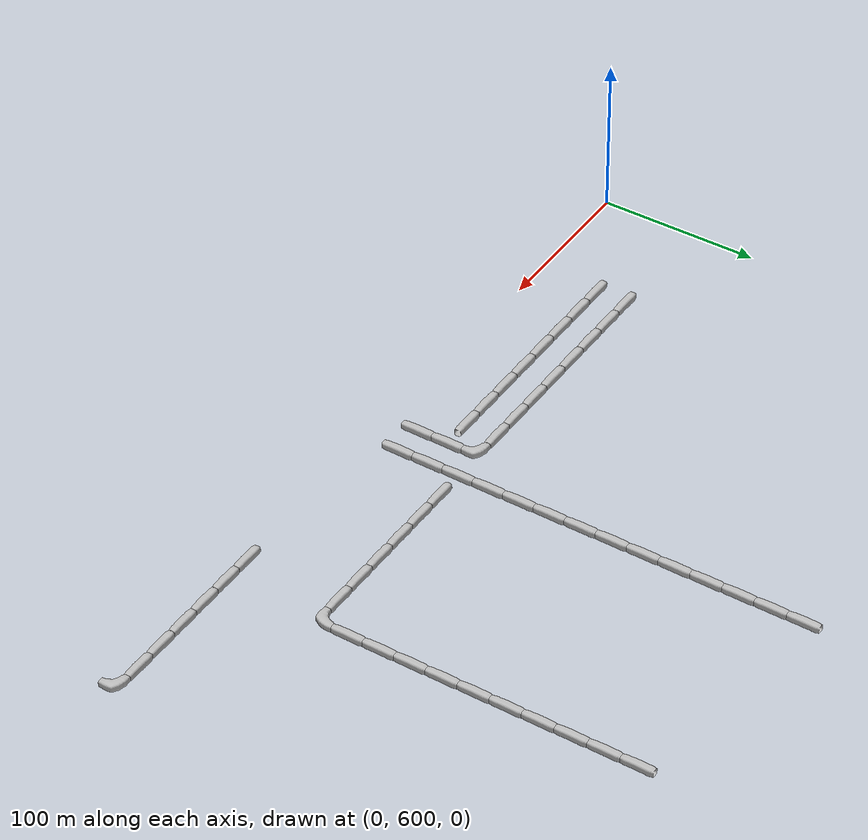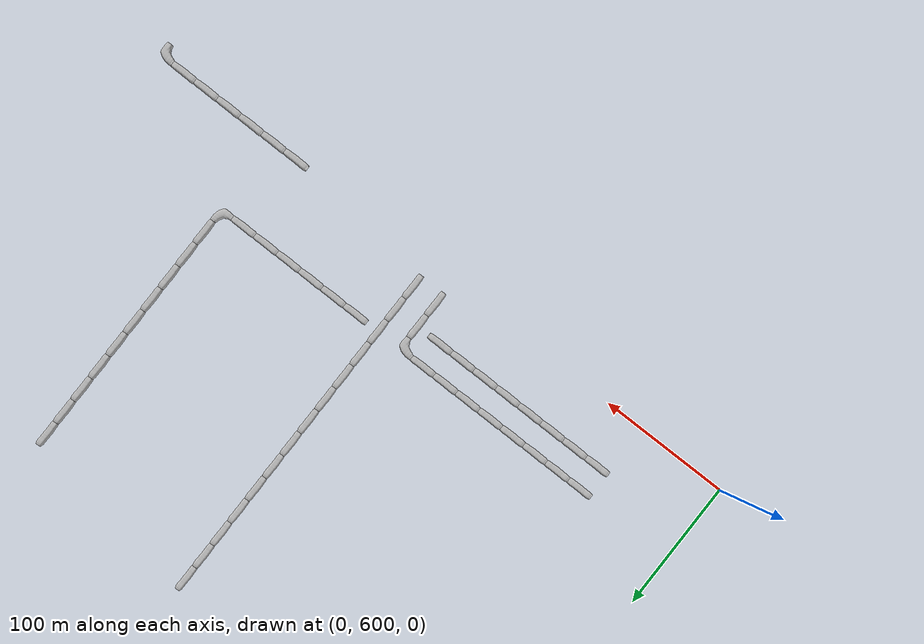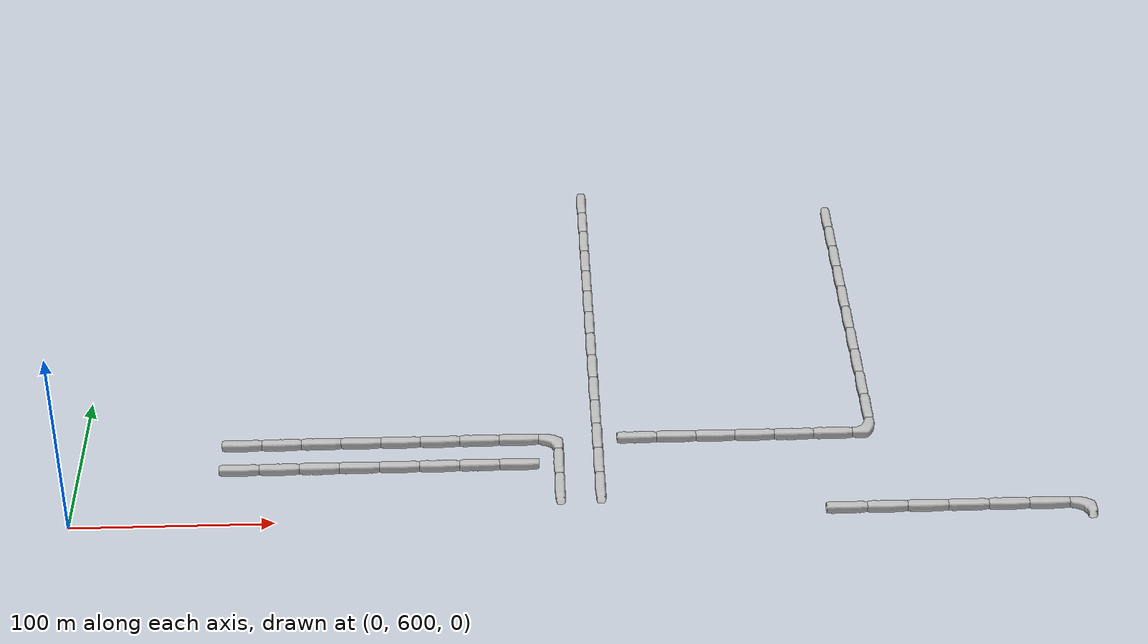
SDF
<sdf version="1.6">
 <world name="cave_32000_2">
  <include>
   <static>true</static>
   <name>cave_20_43</name>
   <pose>400 860 0 0 0 0.0</pose>
   <uri>model://cave_straight_20m</uri>
  </include>
  <include>
   <static>true</static>
   <name>cave_20_42</name>
   <pose>400 840 0 0 0 0.0</pose>
   <uri>model://cave_straight_20m</uri>
  </include>
  <include>
   <static>true</static>
   <name>cave_20_41</name>
   <pose>400 820 0 0 0 0.0</pose>
   <uri>model://cave_straight_20m</uri>
  </include>
  <include>
   <static>true</static>
   <name>cave_20_40</name>
   <pose>400 800 0 0 0 0.0</pose>
   <uri>model://cave_straight_20m</uri>
  </include>
  <include>
   <static>true</static>
   <name>cave_20_39</name>
   <pose>400 780 0 0 0 0.0</pose>
   <uri>model://cave_straight_20m</uri>
  </include>
  <include>
   <static>true</static>
   <name>cave_20_38</name>
   <pose>400 760 0 0 0 0.0</pose>
   <uri>model://cave_straight_20m</uri>
  </include>
  <include>
   <static>true</static>
   <name>cave_20_37</name>
   <pose>400 740 0 0 0 0.0</pose>
   <uri>model://cave_straight_20m</uri>
  </include>
  <include>
   <static>true</static>
   <name>cave_20_36</name>
   <pose>400 720 0 0 0 0.0</pose>
   <uri>model://cave_straight_20m</uri>
  </include>
  <include>
   <static>true</static>
   <name>cave_20_35</name>
   <pose>400 700 0 0 0 0.0</pose>
   <uri>model://cave_straight_20m</uri>
  </include>
  <include>
   <static>true</static>
   <name>cave_20_34</name>
   <pose>400 680 0 0 0 0.0</pose>
   <uri>model://cave_straight_20m</uri>
  </include>
  <include>
   <static>true</static>
   <name>cave_20_33</name>
   <pose>400 660 0 0 0 1.5707963267948966</pose>
   <uri>model://cave_L_20m</uri>
  </include>
  <include>
   <static>true</static>
   <name>cave_19_33</name>
   <pose>380 660 0 0 0 1.5707963267948966</pose>
   <uri>model://cave_straight_20m</uri>
  </include>
  <include>
   <static>true</static>
   <name>cave_18_33</name>
   <pose>360 660 0 0 0 1.5707963267948966</pose>
   <uri>model://cave_straight_20m</uri>
  </include>
  <include>
   <static>true</static>
   <name>cave_17_33</name>
   <pose>340 660 0 0 0 1.5707963267948966</pose>
   <uri>model://cave_straight_20m</uri>
  </include>
  <include>
   <static>true</static>
   <name>cave_16_33</name>
   <pose>320 660 0 0 0 1.5707963267948966</pose>
   <uri>model://cave_straight_20m</uri>
  </include>
  <include>
   <static>true</static>
   <name>cave_15_33</name>
   <pose>300 660 0 0 0 1.5707963267948966</pose>
   <uri>model://cave_straight_20m</uri>
  </include>
  <include>
   <static>true</static>
   <name>cave_14_33</name>
   <pose>280 660 0 0 0 1.5707963267948966</pose>
   <uri>model://cave_straight_20m</uri>
  </include>
  <include>
   <static>true</static>
   <name>cave_13_44</name>
   <pose>260 880 0 0 0 0.0</pose>
   <uri>model://cave_straight_20m</uri>
  </include>
  <include>
   <static>true</static>
   <name>cave_13_43</name>
   <pose>260 860 0 0 0 0.0</pose>
   <uri>model://cave_straight_20m</uri>
  </include>
  <include>
   <static>true</static>
   <name>cave_13_42</name>
   <pose>260 840 0 0 0 0.0</pose>
   <uri>model://cave_straight_20m</uri>
  </include>
  <include>
   <static>true</static>
   <name>cave_13_41</name>
   <pose>260 820 0 0 0 0.0</pose>
   <uri>model://cave_straight_20m</uri>
  </include>
  <include>
   <static>true</static>
   <name>cave_13_40</name>
   <pose>260 800 0 0 0 0.0</pose>
   <uri>model://cave_straight_20m</uri>
  </include>
  <include>
   <static>true</static>
   <name>cave_13_39</name>
   <pose>260 780 0 0 0 0.0</pose>
   <uri>model://cave_straight_20m</uri>
  </include>
  <include>
   <static>true</static>
   <name>cave_13_38</name>
   <pose>260 760 0 0 0 0.0</pose>
   <uri>model://cave_straight_20m</uri>
  </include>
  <include>
   <static>true</static>
   <name>cave_13_37</name>
   <pose>260 740 0 0 0 0.0</pose>
   <uri>model://cave_straight_20m</uri>
  </include>
  <include>
   <static>true</static>
   <name>cave_13_36</name>
   <pose>260 720 0 0 0 0.0</pose>
   <uri>model://cave_straight_20m</uri>
  </include>
  <include>
   <static>true</static>
   <name>cave_13_35</name>
   <pose>260 700 0 0 0 0.0</pose>
   <uri>model://cave_straight_20m</uri>
  </include>
  <include>
   <static>true</static>
   <name>cave_13_34</name>
   <pose>260 680 0 0 0 0.0</pose>
   <uri>model://cave_straight_20m</uri>
  </include>
  <include>
   <static>true</static>
   <name>cave_13_33</name>
   <pose>260 660 0 0 0 0.0</pose>
   <uri>model://cave_straight_20m</uri>
  </include>
  <include>
   <static>true</static>
   <name>cave_13_32</name>
   <pose>260 640 0 0 0 0.0</pose>
   <uri>model://cave_straight_20m</uri>
  </include>
  <include>
   <static>true</static>
   <name>cave_13_31</name>
   <pose>260 620 0 0 0 0.0</pose>
   <uri>model://cave_straight_20m</uri>
  </include>
  <include>
   <static>true</static>
   <name>cave_25_30</name>
   <pose>500 600 0 0 0 3.141592653589793</pose>
   <uri>model://cave_L_20m</uri>
  </include>
  <include>
   <static>true</static>
   <name>cave_24_30</name>
   <pose>480 600 0 0 0 1.5707963267948966</pose>
   <uri>model://cave_straight_20m</uri>
  </include>
  <include>
   <static>true</static>
   <name>cave_23_30</name>
   <pose>460 600 0 0 0 1.5707963267948966</pose>
   <uri>model://cave_straight_20m</uri>
  </include>
  <include>
   <static>true</static>
   <name>cave_22_30</name>
   <pose>440 600 0 0 0 1.5707963267948966</pose>
   <uri>model://cave_straight_20m</uri>
  </include>
  <include>
   <static>true</static>
   <name>cave_21_30</name>
   <pose>420 600 0 0 0 1.5707963267948966</pose>
   <uri>model://cave_straight_20m</uri>
  </include>
  <include>
   <static>true</static>
   <name>cave_20_30</name>
   <pose>400 600 0 0 0 1.5707963267948966</pose>
   <uri>model://cave_straight_20m</uri>
  </include>
  <include>
   <static>true</static>
   <name>cave_19_30</name>
   <pose>380 600 0 0 0 1.5707963267948966</pose>
   <uri>model://cave_straight_20m</uri>
  </include>
  <include>
   <static>true</static>
   <name>cave_12_31</name>
   <pose>240 620 0 0 0 0.0</pose>
   <uri>model://cave_straight_20m</uri>
  </include>
  <include>
   <static>true</static>
   <name>cave_12_32</name>
   <pose>240 640 0 0 0 0.0</pose>
   <uri>model://cave_straight_20m</uri>
  </include>
  <include>
   <static>true</static>
   <name>cave_12_33</name>
   <pose>240 660 0 0 0 3.141592653589793</pose>
   <uri>model://cave_L_20m</uri>
  </include>
  <include>
   <static>true</static>
   <name>cave_11_33</name>
   <pose>220 660 0 0 0 1.5707963267948966</pose>
   <uri>model://cave_straight_20m</uri>
  </include>
  <include>
   <static>true</static>
   <name>cave_10_33</name>
   <pose>200 660 0 0 0 1.5707963267948966</pose>
   <uri>model://cave_straight_20m</uri>
  </include>
  <include>
   <static>true</static>
   <name>cave_9_33</name>
   <pose>180 660 0 0 0 1.5707963267948966</pose>
   <uri>model://cave_straight_20m</uri>
  </include>
  <include>
   <static>true</static>
   <name>cave_8_33</name>
   <pose>160 660 0 0 0 1.5707963267948966</pose>
   <uri>model://cave_straight_20m</uri>
  </include>
  <include>
   <static>true</static>
   <name>cave_7_33</name>
   <pose>140 660 0 0 0 1.5707963267948966</pose>
   <uri>model://cave_straight_20m</uri>
  </include>
  <include>
   <static>true</static>
   <name>cave_6_33</name>
   <pose>120 660 0 0 0 1.5707963267948966</pose>
   <uri>model://cave_straight_20m</uri>
  </include>
  <include>
   <static>true</static>
   <name>cave_5_33</name>
   <pose>100 660 0 0 0 1.5707963267948966</pose>
   <uri>model://cave_straight_20m</uri>
  </include>
  <include>
   <static>true</static>
   <name>cave_4_33</name>
   <pose>80 660 0 0 0 1.5707963267948966</pose>
   <uri>model://cave_straight_20m</uri>
  </include>
  <include>
   <static>true</static>
   <name>cave_4_32</name>
   <pose>80 640 0 0 0 1.5707963267948966</pose>
   <uri>model://cave_straight_20m</uri>
  </include>
  <include>
   <static>true</static>
   <name>cave_5_32</name>
   <pose>100 640 0 0 0 1.5707963267948966</pose>
   <uri>model://cave_straight_20m</uri>
  </include>
  <include>
   <static>true</static>
   <name>cave_6_32</name>
   <pose>120 640 0 0 0 1.5707963267948966</pose>
   <uri>model://cave_straight_20m</uri>
  </include>
  <include>
   <static>true</static>
   <name>cave_7_32</name>
   <pose>140 640 0 0 0 1.5707963267948966</pose>
   <uri>model://cave_straight_20m</uri>
  </include>
  <include>
   <static>true</static>
   <name>cave_8_32</name>
   <pose>160 640 0 0 0 1.5707963267948966</pose>
   <uri>model://cave_straight_20m</uri>
  </include>
  <include>
   <static>true</static>
   <name>cave_9_32</name>
   <pose>180 640 0 0 0 1.5707963267948966</pose>
   <uri>model://cave_straight_20m</uri>
  </include>
  <include>
   <static>true</static>
   <name>cave_10_32</name>
   <pose>200 640 0 0 0 1.5707963267948966</pose>
   <uri>model://cave_straight_20m</uri>
  </include>
  <include>
   <static>true</static>
   <name>cave_11_32</name>
   <pose>220 640 0 0 0 1.5707963267948966</pose>
   <uri>model://cave_straight_20m</uri>
  </include>
 </world>
</sdf>
